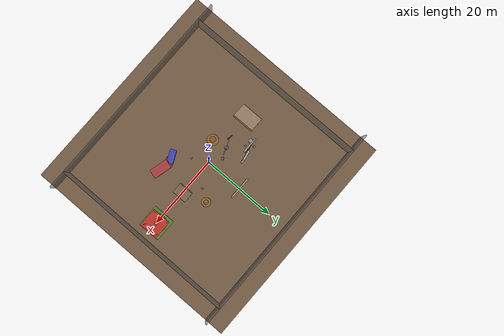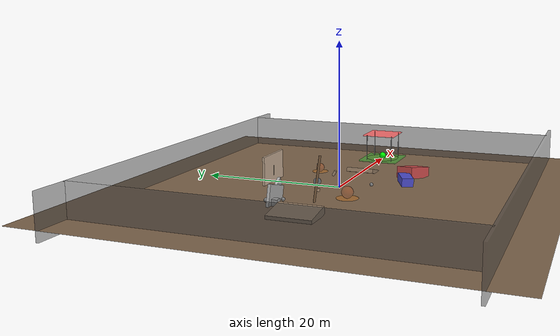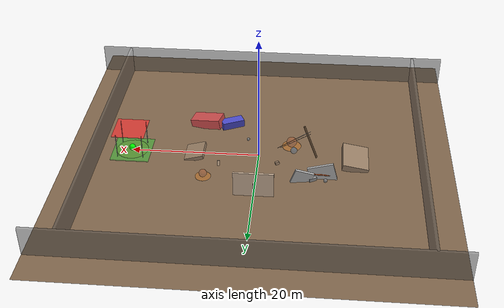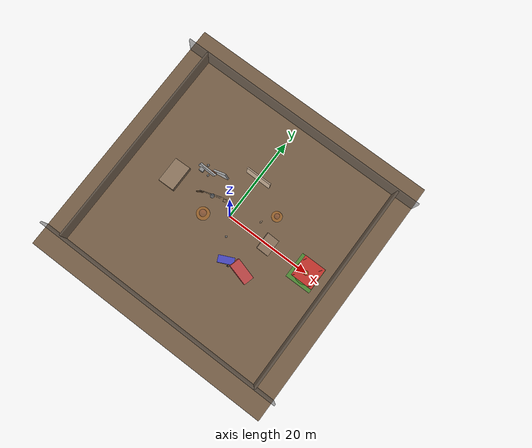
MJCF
<mujoco model="disaster_environment">
    <!-- Disaster scene with debris, obstacles, and safe zones -->
    <worldbody>
        <!-- Ground plane with rough terrain -->
        <geom name="ground" type="plane" size="30 30 0.1" rgba="0.5 0.4 0.3 1" friction="1.5 0.1 0.1"/>

        <!-- Safe zone (rescue point) -->
        <body name="safe_zone" pos="20 0 0">
            <geom name="safe_zone_platform" type="box" size="3 3 0.1" rgba="0.2 0.8 0.2 0.5"/>
            <geom name="safe_zone_marker" type="cylinder" size="2.5 0.02" pos="0 0 0.11" rgba="0 1 0 0.3"/>
            <site name="safe_zone_center" pos="0 0 0.5" size="0.5" rgba="0 1 0 1"/>

            <!-- Medical tent marker -->
            <geom name="tent_pole1" type="cylinder" size="0.05 2" pos="-2 -2 2" rgba="0.8 0.8 0.8 1"/>
            <geom name="tent_pole2" type="cylinder" size="0.05 2" pos="2 -2 2" rgba="0.8 0.8 0.8 1"/>
            <geom name="tent_pole3" type="cylinder" size="0.05 2" pos="2 2 2" rgba="0.8 0.8 0.8 1"/>
            <geom name="tent_pole4" type="cylinder" size="0.05 2" pos="-2 2 2" rgba="0.8 0.8 0.8 1"/>
            <geom name="tent_roof" type="box" size="2.5 2.5 0.05" pos="0 0 4" rgba="1 0.2 0.2 0.7"/>
        </body>

        <!-- Debris field 1 - Collapsed building -->
        <body name="debris_building" pos="-10 5 0">
            <geom name="wall_fragment1" type="box" size="2 0.2 1.5" pos="0 0 0.75" euler="0 15 0" rgba="0.7 0.7 0.7 1"/>
            <geom name="wall_fragment2" type="box" size="1.5 0.2 1.2" pos="3 1 0.6" euler="0 -20 10" rgba="0.7 0.7 0.7 1"/>
            <geom name="concrete_block1" type="box" size="0.5 0.5 0.5" pos="-1 -0.5 0.25" rgba="0.6 0.6 0.6 1"/>
            <geom name="concrete_block2" type="box" size="0.6 0.4 0.3" pos="1.5 0.5 0.15" euler="0 0 30" rgba="0.6 0.6 0.6 1"/>
            <geom name="rubble1" type="sphere" size="0.3" pos="-0.5 1 0.3" rgba="0.5 0.5 0.5 1"/>
            <geom name="rubble2" type="sphere" size="0.25" pos="0.8 -0.8 0.25" rgba="0.5 0.5 0.5 1"/>
            <geom name="beam1" type="capsule" fromto="-2 0 0.5 2 0.5 1" size="0.1" rgba="0.8 0.4 0.2 1"/>
        </body>

        <!-- Debris field 2 - Damaged vehicles -->
        <body name="debris_vehicles" pos="5 -8 0">
            <geom name="car_body" type="box" size="1.8 0.8 0.6" pos="0 0 0.6" euler="0 0 25" rgba="0.3 0.3 0.8 1"/>
            <geom name="car_wheel1" type="cylinder" size="0.3 0.1" pos="-1 -0.8 0.3" euler="90 0 0" rgba="0.1 0.1 0.1 1"/>
            <geom name="car_wheel2" type="cylinder" size="0.3 0.1" pos="1 -0.8 0.3" euler="90 0 0" rgba="0.1 0.1 0.1 1"/>
            <geom name="truck_body" type="box" size="2.5 1.2 0.8" pos="4 0 0.8" euler="0 10 -15" rgba="0.8 0.3 0.3 1"/>
        </body>

        <!-- Fire hazard zones (visual only) -->
        <body name="fire_zone1" pos="-5 -3 0">
            <geom name="fire_base1" type="cylinder" size="1.5 0.01" pos="0 0 0.01" rgba="1 0.5 0 0.3"/>
            <geom name="fire_particles1" type="sphere" size="0.8" pos="0 0 0.8" rgba="1 0.3 0 0.2"/>
        </body>

        <body name="fire_zone2" pos="8 6 0">
            <geom name="fire_base2" type="cylinder" size="1.2 0.01" pos="0 0 0.01" rgba="1 0.5 0 0.3"/>
            <geom name="fire_particles2" type="sphere" size="0.6" pos="0 0 0.6" rgba="1 0.3 0 0.2"/>
        </body>

        <!-- Unstable structures -->
        <body name="unstable_wall" pos="0 10 0">
            <joint name="wall_sway" type="hinge" axis="1 0 0" limited="false" damping="10"/>
            <geom name="unstable_wall_geom" type="box" size="3 0.15 2" pos="0 0 2" rgba="0.8 0.7 0.6 1"/>
            <geom name="wall_crack" type="box" size="0.05 0.16 0.8" pos="0 0 1.5" rgba="0.2 0.2 0.2 0.5"/>
        </body>

        <!-- Fallen power lines (obstacles) -->
        <body name="power_lines" pos="-8 0 0">
            <geom name="power_pole1" type="cylinder" size="0.15 3" pos="0 0 3" euler="0 20 0" rgba="0.4 0.3 0.2 1"/>
            <geom name="power_line1" type="capsule" fromto="0 0 5 5 2 3" size="0.02" rgba="0.1 0.1 0.1 1"/>
            <geom name="power_line2" type="capsule" fromto="0 0 4.5 4.5 1.5 2.8" size="0.02" rgba="0.1 0.1 0.1 1"/>
            <geom name="spark_zone" type="sphere" size="0.5" pos="2.5 1 2" rgba="0 0.5 1 0.2"/>
        </body>

        <!-- Small obstacles and debris -->
        <body name="small_debris1" pos="-3 2 0">
            <geom name="debris1_geom" type="box" size="0.3 0.3 0.2" pos="0 0 0.2" euler="10 15 20" rgba="0.6 0.5 0.4 1"/>
        </body>

        <body name="small_debris2" pos="2 -4 0">
            <geom name="debris2_geom" type="sphere" size="0.25" pos="0 0 0.25" rgba="0.5 0.5 0.5 1"/>
        </body>

        <body name="small_debris3" pos="6 3 0">
            <geom name="debris3_geom" type="cylinder" size="0.2 0.4" pos="0 0 0.4" euler="30 0 0" rgba="0.7 0.6 0.5 1"/>
        </body>

        <!-- Ramp/elevation changes -->
        <body name="ramp1" pos="-15 0 0">
            <geom name="ramp1_geom" type="box" size="2 3 0.5" pos="0 0 0.25" euler="0 -10 0" rgba="0.6 0.5 0.4 1"/>
        </body>

        <body name="ramp2" pos="10 0 0">
            <geom name="ramp2_geom" type="box" size="1.5 2 0.3" pos="0 0 0.15" euler="0 15 0" rgba="0.6 0.5 0.4 1"/>
        </body>

        <!-- Boundary walls -->
        <body name="boundary_north" pos="0 25 0">
            <geom name="wall_north" type="box" size="30 0.2 3" pos="0 0 1.5" rgba="0.3 0.3 0.3 0.5"/>
        </body>

        <body name="boundary_south" pos="0 -25 0">
            <geom name="wall_south" type="box" size="30 0.2 3" pos="0 0 1.5" rgba="0.3 0.3 0.3 0.5"/>
        </body>

        <body name="boundary_east" pos="25 0 0">
            <geom name="wall_east" type="box" size="0.2 25 3" pos="0 0 1.5" rgba="0.3 0.3 0.3 0.5"/>
        </body>

        <body name="boundary_west" pos="-25 0 0">
            <geom name="wall_west" type="box" size="0.2 25 3" pos="0 0 1.5" rgba="0.3 0.3 0.3 0.5"/>
        </body>
    </worldbody>

    <!-- Lights for dramatic effect -->
    <light name="emergency_light1" pos="20 0 5" dir="0 0 -1" diffuse="1 0.2 0.2" specular="0.5 0.1 0.1"/>
    <light name="emergency_light2" pos="-10 5 4" dir="0 0 -1" diffuse="1 0.5 0" specular="0.5 0.2 0"/>
    <light name="searchlight" pos="0 0 10" dir="0 0 -1" diffuse="0.8 0.8 0.8" specular="0.3 0.3 0.3"/>
</mujoco>
